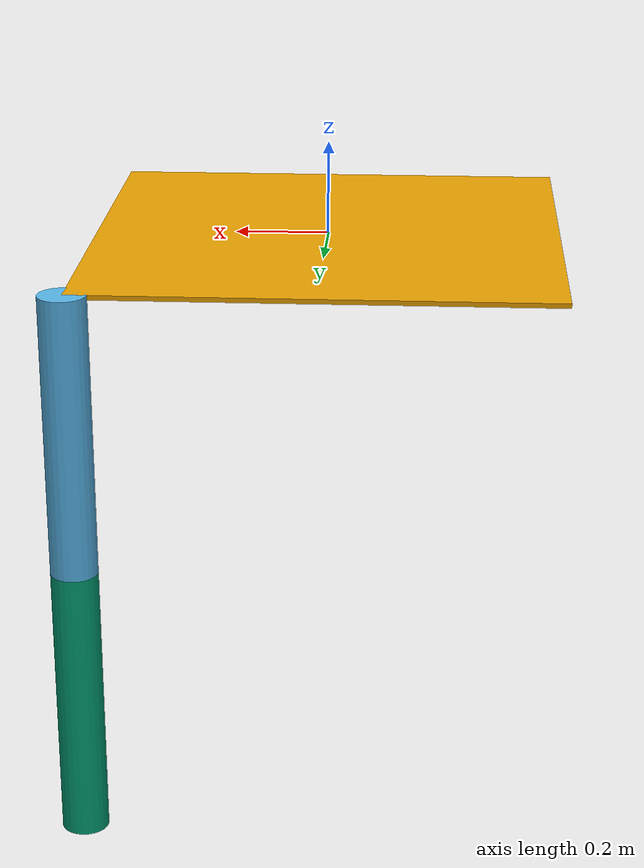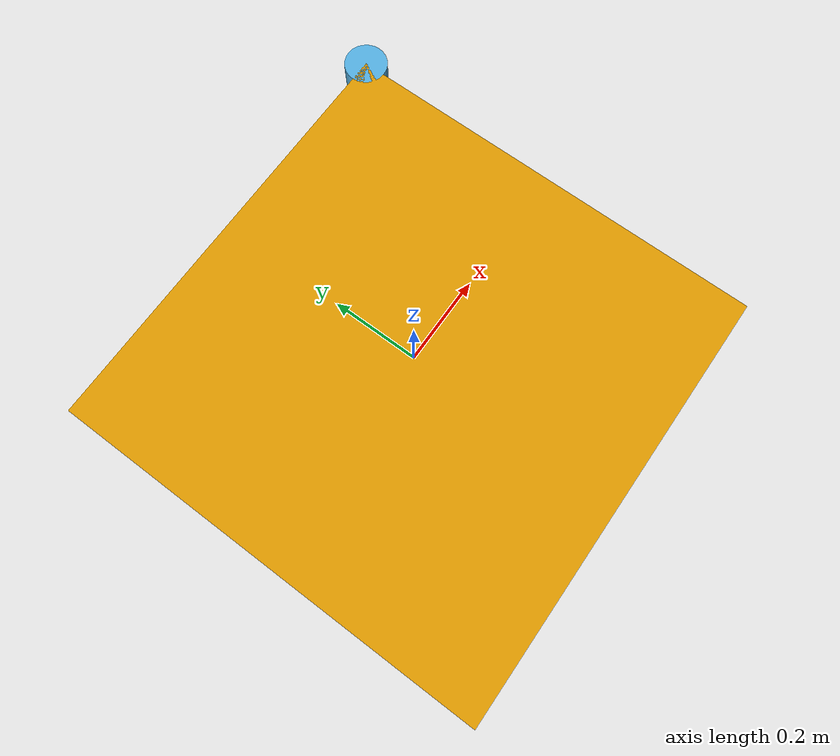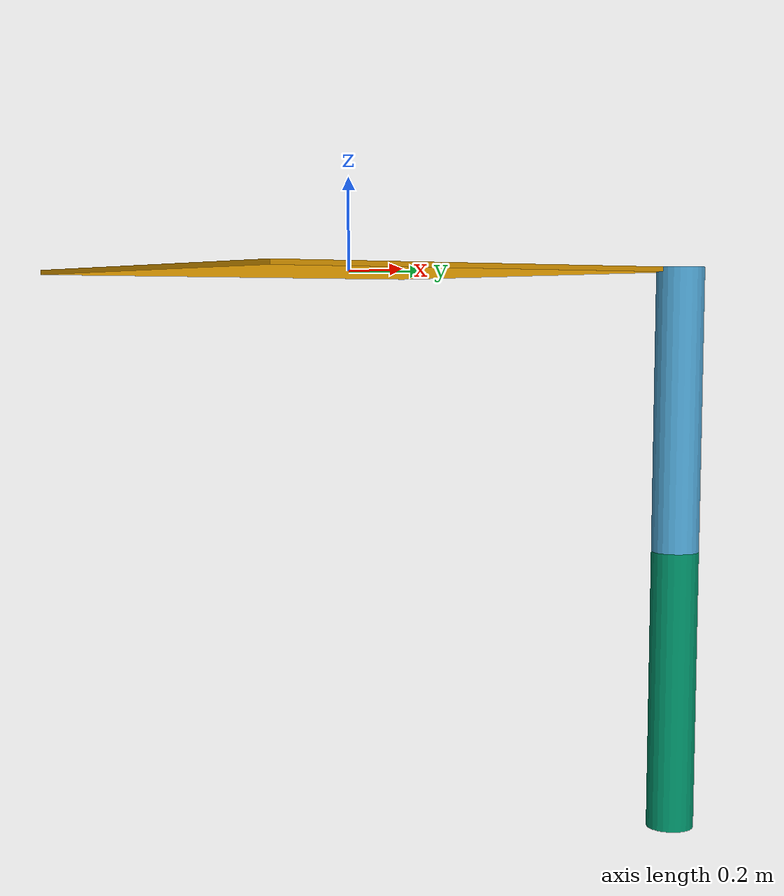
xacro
<?xml version="1.0" ?>
<robot name = "mrm" xmlns:xacro="http://www.ros.org/wiki/xacro" >

<link name="base_link">
	<visual>
		<origin rpy="0 0 0" xyz="0 0 0"/>
		<geometry>
		<box size ="1 1 0.01" />
	</geometry>
</visual>
</link>
<joint name="baselink__link_01" type="revolute">
	<axis xyz="0 1 0"/>
	<limit effort ="1000.0" lower="-3.14" upper="3.14" velocity="0.5"/>
		<origin rpy= "0 0 0" xyz="0.5 0.5 0.005"/>
		<parent link="base_link"/>
		<child link="link_01"/>
	</joint>

	<link name="link_01">
		<visual>
			<origin rpy="0 0 0" xyz = "0 0 -0.3"/>
			<geometry>
				<cylinder radius="0.05" length="0.6"/>
			</geometry>
		</visual>
	</link>
	<joint name="link_01__link_02" type="revolute">
	<axis xyz="0 1 0"/>
	<limit effort ="1000.0" lower="-3.14" upper="3.14" velocity="0.5"/>
		<origin rpy= "0 0 0" xyz="0 0 -0.6"/>
		<parent link="link_01"/>
		<child link="link_02"/>
	</joint>

	<link name="link_02">
		<visual>
			<origin rpy="0 0 0" xyz = "0 0 -0.3"/>
			<geometry>
				<cylinder radius="0.05" length="0.6"/>
			</geometry>
		</visual>
	</link>

	</robot>
